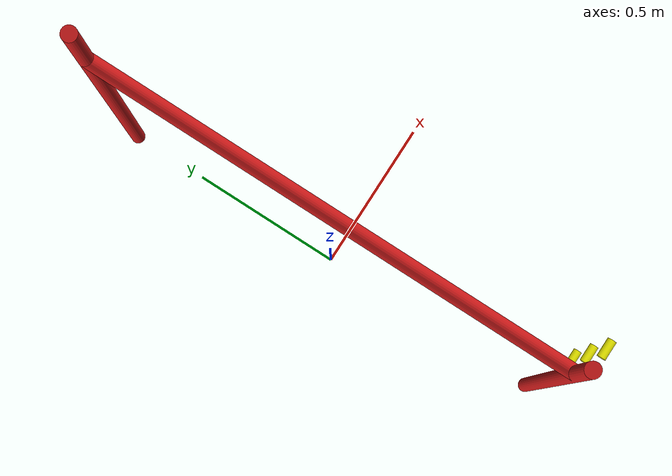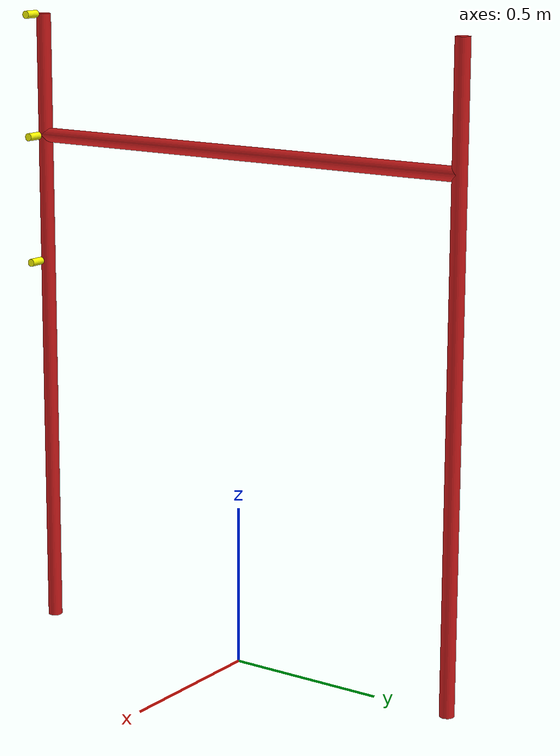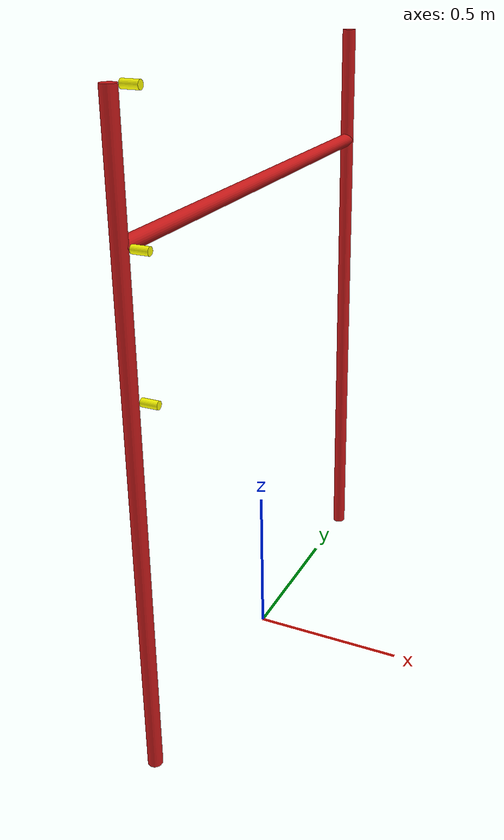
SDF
<?xml version="1.0" ?>
<sdf version="1.9">
  <model name="red_bar">
    <static>true</static>

    <!-- Left post -->
    <link name="post_left">
      <pose>0 -0.75 0.99 0 0 0</pose>
      <collision name="col"><geometry><cylinder><radius>0.0225</radius><length>1.98</length></cylinder></geometry></collision>
      <visual name="vis">
        <geometry><cylinder><radius>0.0225</radius><length>1.98</length></cylinder></geometry>
        <material><ambient>0.8 0.1 0.1 1</ambient><diffuse>0.8 0.1 0.1 1</diffuse></material>
      </visual>
    </link>

    <!-- Right post -->
    <link name="post_right">
      <pose>0 0.75 0.99 0 0 0</pose>
      <collision name="col"><geometry><cylinder><radius>0.0225</radius><length>1.98</length></cylinder></geometry></collision>
      <visual name="vis">
        <geometry><cylinder><radius>0.0225</radius><length>1.98</length></cylinder></geometry>
        <material><ambient>0.8 0.1 0.1 1</ambient><diffuse>0.8 0.1 0.1 1</diffuse></material>
      </visual>
    </link>

    <!-- Horizontal bar at 1600mm (middle/default height). Cylinder rotated 90° to lie in Y. -->
    <link name="bar">
      <pose>0 0 1.6 1.5708 0 0</pose>
      <collision name="col"><geometry><cylinder><radius>0.0225</radius><length>1.5</length></cylinder></geometry></collision>
      <visual name="vis">
        <geometry><cylinder><radius>0.0225</radius><length>1.5</length></cylinder></geometry>
        <material><ambient>0.8 0.1 0.1 1</ambient><diffuse>0.8 0.1 0.1 1</diffuse></material>
      </visual>
    </link>

    <!-- Height indicator pegs on left post (visual only): low=1.2m, mid=1.6m, high=1.98m -->
    <link name="peg_low">
      <pose>0.06 -0.75 1.2 0 1.5708 0</pose>
      <visual name="vis">
        <geometry><cylinder><radius>0.012</radius><length>0.05</length></cylinder></geometry>
        <material><ambient>1 1 0 1</ambient><diffuse>1 1 0 1</diffuse></material>
      </visual>
    </link>
    <link name="peg_mid">
      <pose>0.06 -0.75 1.6 0 1.5708 0</pose>
      <visual name="vis">
        <geometry><cylinder><radius>0.012</radius><length>0.05</length></cylinder></geometry>
        <material><ambient>1 1 0 1</ambient><diffuse>1 1 0 1</diffuse></material>
      </visual>
    </link>
    <link name="peg_high">
      <pose>0.06 -0.75 1.98 0 1.5708 0</pose>
      <visual name="vis">
        <geometry><cylinder><radius>0.012</radius><length>0.05</length></cylinder></geometry>
        <material><ambient>1 1 0 1</ambient><diffuse>1 1 0 1</diffuse></material>
      </visual>
    </link>

  </model>
</sdf>
